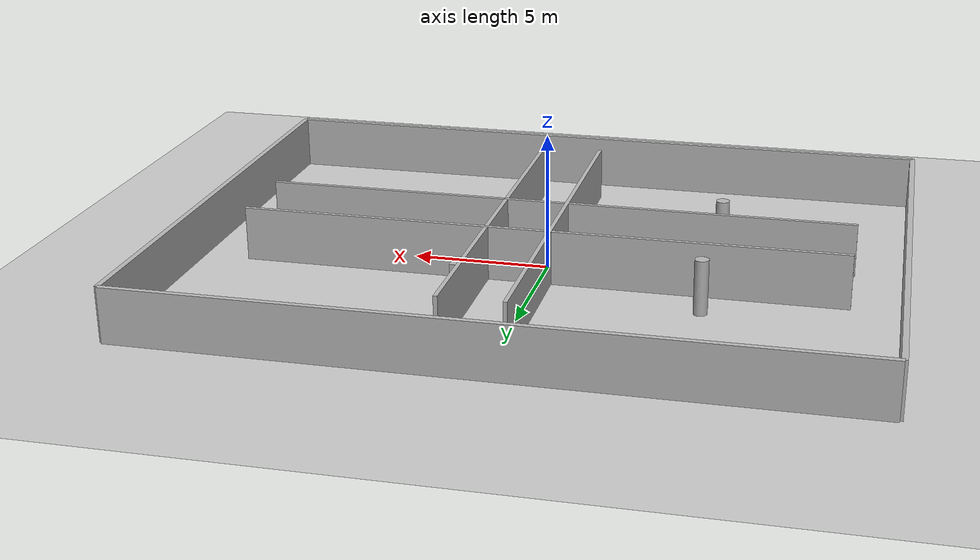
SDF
<?xml version="1.0" ?>
<sdf version="1.6">
  <world name="office_world">
    <physics type="ode">
      <max_step_size>0.001</max_step_size>
      <real_time_update_rate>1000</real_time_update_rate>
    </physics>

    <include><uri>model://ground_plane</uri></include>
    <include><uri>model://sun</uri></include>

    <!-- Perimeter walls = 25.6m x 19.2m, centered at (0,0) -->
    <!-- Long (X) walls @ y = ±9.6 -->
    <model name="south_wall"><static>true</static>
      <pose>0 -9.6 1 0 0 0</pose>
      <link name="link">
        <collision name="c"><geometry><box><size>25.6 0.2 2</size></box></geometry></collision>
        <visual    name="v"><geometry><box><size>25.6 0.2 2</size></box></geometry></visual>
      </link>
    </model>
    <model name="north_wall"><static>true</static>
      <pose>0  9.6 1 0 0 0</pose>
      <link name="link">
        <collision name="c"><geometry><box><size>25.6 0.2 2</size></box></geometry></collision>
        <visual    name="v"><geometry><box><size>25.6 0.2 2</size></box></geometry></visual>
      </link>
    </model>

    <!-- Short (Y) walls @ x = ±12.8 -->
    <model name="west_wall"><static>true</static>
      <pose>-12.8 0 1 0 0 0</pose>
      <link name="link">
        <collision name="c"><geometry><box><size>0.2 19.2 2</size></box></geometry></collision>
        <visual    name="v"><geometry><box><size>0.2 19.2 2</size></box></geometry></visual>
      </link>
    </model>
    <model name="east_wall"><static>true</static>
      <pose>12.8 0 1 0 0 0</pose>
      <link name="link">
        <collision name="c"><geometry><box><size>0.2 19.2 2</size></box></geometry></collision>
        <visual    name="v"><geometry><box><size>0.2 19.2 2</size></box></geometry></visual>
      </link>
    </model>

    <!-- Main X-corridor widened to 3.0 m (rails are thin boxes) -->
    <model name="corridor_north"><static>true</static>
      <pose>0  1.5 1 0 0 0</pose>
      <link name="link">
        <collision name="c"><geometry><box><size>22.0 0.15 2</size></box></geometry></collision>
        <visual    name="v"><geometry><box><size>22.0 0.15 2</size></box></geometry></visual>
      </link>
    </model>
    <model name="corridor_south"><static>true</static>
      <pose>0 -1.5 1 0 0 0</pose>
      <link name="link">
        <collision name="c"><geometry><box><size>22.0 0.15 2</size></box></geometry></collision>
        <visual    name="v"><geometry><box><size>22.0 0.15 2</size></box></geometry></visual>
      </link>
    </model>

    <!-- Cross Y-corridor widened to 2.6 m -->
    <model name="cross_west"><static>true</static>
      <pose>-0.4 0 1 0 0 0</pose>
      <link name="link">
        <collision name="c"><geometry><box><size>0.15 16.0 2</size></box></geometry></collision>
        <visual    name="v"><geometry><box><size>0.15 16.0 2</size></box></geometry></visual>
      </link>
    </model>
    <model name="cross_east"><static>true</static>
      <pose> 1.9 0 1 0 0 0</pose>
      <link name="link">
        <collision name="c"><geometry><box><size>0.15 16.0 2</size></box></geometry></collision>
        <visual    name="v"><geometry><box><size>0.15 16.0 2</size></box></geometry></visual>
      </link>
    </model>

    <!-- Obstacles (columns + carts) -->
    <model name="column1"><static>true</static>
      <pose>-6 -3 1 0 0 0</pose>
      <link name="link">
        <collision name="c"><geometry><cylinder><radius>0.25</radius><length>2</length></cylinder></geometry></collision>
        <visual    name="v"><geometry><cylinder><radius>0.25</radius><length>2</length></cylinder></geometry></visual>
      </link>
    </model>
    <model name="column2"><static>true</static>
      <pose>-6  3 1 0 0 0</pose>
      <link name="link">
        <collision name="c"><geometry><cylinder><radius>0.25</radius><length>2</length></cylinder></geometry></collision>
        <visual    name="v"><geometry><cylinder><radius>0.25</radius><length>2</length></cylinder></geometry></visual>
      </link>
    </model>
    <model name="cart1"><static>true</static>
      <pose>4 -2 0.5 0 0 0</pose>
      <link name="link">
        <collision name="c"><geometry><box><size>1.0 0.6 1.0</size></box></geometry></collision>
        <visual    name="v"><geometry><box><size>1.0 0.6 1.0</size></box></geometry></visual>
      </link>
    </model>
    <model name="cart2"><static>true</static>
      <pose>2.5 2.5 0.5 0 0 0</pose>
      <link name="link">
        <collision name="c"><geometry><box><size>0.8 0.8 1.0</size></box></geometry></collision>
        <visual    name="v"><geometry><box><size>0.8 0.8 1.0</size></box></geometry></visual>
      </link>
    </model>
  </world>
</sdf>
